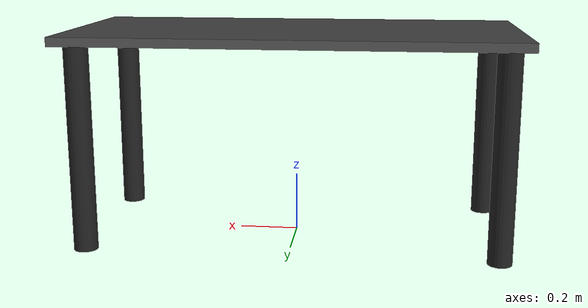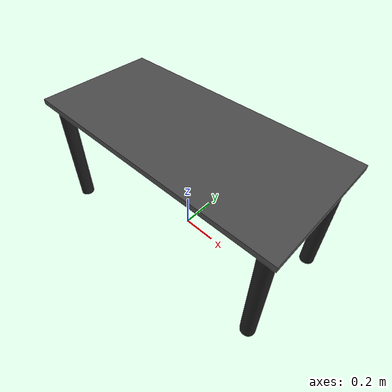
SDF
<?xml version='1.0'?>
<sdf version='1.7'>
  <model name='black_table'>
    <static>1</static>
    <link name='link'>
      <collision name='surface'>
        <pose>0 0 0.7 0 -0 0</pose>
        <geometry>
          <box>
            <size>1.5 0.7 0.03</size>
          </box>
        </geometry>
        <surface>
          <friction>
            <ode>
              <mu>0.6</mu>
              <mu2>0.6</mu2>
            </ode>
          </friction>
        </surface>
      </collision>
      <visual name='visual1'>
        <pose>0 0 0.7 0 -0 0</pose>
        <geometry>
          <box>
            <size>1.5 0.7 0.03</size>
          </box>
        </geometry>
        <material>
          <ambient>0.2 0.2 0.2 1</ambient>
          <diffuse>0.3 0.3 0.3 1</diffuse>
          <specular>0.6 0.6 0.6 1</specular>
          <emissive>0 0 0 1</emissive>
        </material>
      </visual>
      <collision name='front_left_leg'>
        <pose>0.68 0.28 0.35 0 -0 0</pose>
        <geometry>
          <cylinder>
            <radius>0.04</radius>
            <length>0.7</length>
          </cylinder>
        </geometry>
      </collision>
      <visual name='front_left_leg'>
        <pose>0.68 0.28 0.35 0 -0 0</pose>
        <geometry>
          <cylinder>
            <radius>0.04</radius>
            <length>0.7</length>
          </cylinder>
        </geometry>
        <material>
          <script>
            <uri>file://media/materials/scripts/gazebo.material</uri>
            <name>Gazebo/Black</name>
          </script>
        </material>
      </visual>
      <collision name='front_right_leg'>
        <pose>0.68 -0.28 0.35 0 -0 0</pose>
        <geometry>
          <cylinder>
            <radius>0.04</radius>
            <length>0.7</length>
          </cylinder>
        </geometry>
      </collision>
      <visual name='front_right_leg'>
        <pose>0.68 -0.28 0.35 0 -0 0</pose>
        <geometry>
          <cylinder>
            <radius>0.04</radius>
            <length>0.7</length>
          </cylinder>
        </geometry>
        <material>
          <script>
            <uri>file://media/materials/scripts/gazebo.material</uri>
            <name>Gazebo/Black</name>
          </script>
        </material>
      </visual>
      <collision name='back_right_leg'>
        <pose>-0.68 -0.28 0.35 0 -0 0</pose>
        <geometry>
          <cylinder>
            <radius>0.04</radius>
            <length>0.7</length>
          </cylinder>
        </geometry>
      </collision>
      <visual name='back_right_leg'>
        <pose>-0.68 -0.28 0.35 0 -0 0</pose>
        <geometry>
          <cylinder>
            <radius>0.04</radius>
            <length>0.7</length>
          </cylinder>
        </geometry>
        <material>
          <script>
            <uri>file://media/materials/scripts/gazebo.material</uri>
            <name>Gazebo/Black</name>
          </script>
        </material>
      </visual>
      <collision name='back_left_leg'>
        <pose>-0.68 0.28 0.35 0 -0 0</pose>
        <geometry>
          <cylinder>
            <radius>0.04</radius>
            <length>0.7</length>
          </cylinder>
        </geometry>
      </collision>
      <visual name='back_left_leg'>
        <pose>-0.68 0.28 0.35 0 -0 0</pose>
        <geometry>
          <cylinder>
            <radius>0.04</radius>
            <length>0.7</length>
          </cylinder>
        </geometry>
        <material>
          <script>
            <uri>file://media/materials/scripts/gazebo.material</uri>
            <name>Gazebo/Black</name>
          </script>
        </material>
      </visual>
    </link>
    <pose>4e-06 -1e-06 -0 0 -0 0</pose>
  </model>
</sdf>
